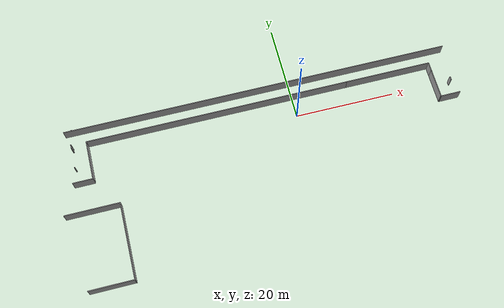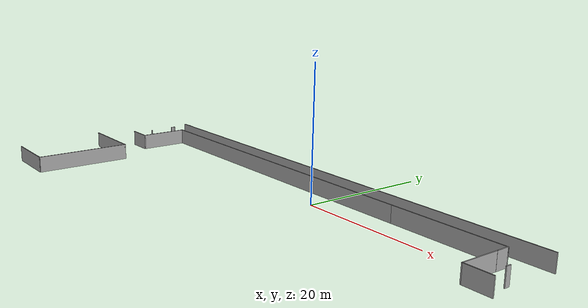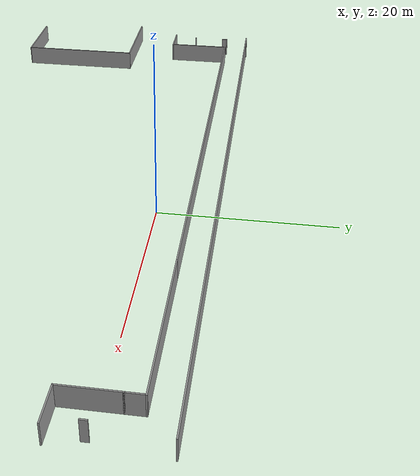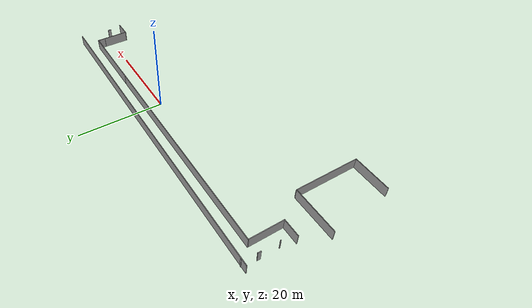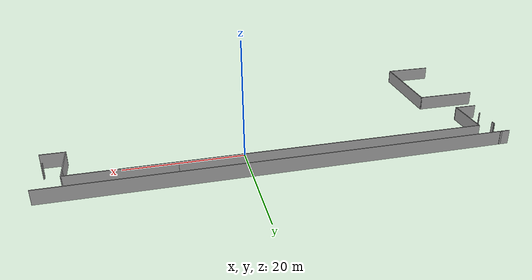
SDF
<sdf version="1.7">
 <model name="TD">
  <pose>-6.31602 -6.69767 0 0 -0 0</pose>
  <link name="Wall_109">
   <collision name="Wall_109_Collision">
    <geometry><box><size>4.11337 0.15 2.5</size></box></geometry>
    <pose>0 0 1.25 0 -0 0</pose>
   </collision>
   <visual name="Wall_109_Visual">
    <pose>0 0 1.25 0 -0 0</pose>
    <geometry><box><size>4.11337 0.15 2.5</size></box></geometry>
    <material>
     <script><uri>file://media/materials/scripts/gazebo.material</uri><name>Gazebo/Grey</name></script>
     <ambient>1 1 1 1</ambient>
    </material>
    <meta><layer>0</layer></meta>
   </visual>
   <pose>36.8641 2.84678 0 0 -0 3.14159</pose>
  </link>
  <link name="Wall_110">
   <collision name="Wall_110_Collision">
    <geometry><box><size>6 0.15 2.5</size></box></geometry>
    <pose>0 0 1.25 0 -0 0</pose>
   </collision>
   <visual name="Wall_110_Visual">
    <pose>0 0 1.25 0 -0 0</pose>
    <geometry><box><size>6 0.15 2.5</size></box></geometry>
    <material>
     <script><uri>file://media/materials/scripts/gazebo.material</uri><name>Gazebo/Grey</name></script>
     <ambient>1 1 1 1</ambient>
    </material>
    <meta><layer>0</layer></meta>
   </visual>
   <pose>34.8827 5.77178 0 0 -0 1.5708</pose>
  </link>
  <link name="Wall_111">
   <collision name="Wall_111_Collision">
    <geometry><box><size>0.16 0.15 2.5</size></box></geometry>
    <pose>0 0 1.25 0 -0 0</pose>
   </collision>
   <visual name="Wall_111_Visual">
    <pose>0 0 1.25 0 -0 0</pose>
    <geometry><box><size>0.16 0.15 2.5</size></box></geometry>
    <material>
     <script><uri>file://media/materials/scripts/gazebo.material</uri><name>Gazebo/Grey</name></script>
     <ambient>1 1 1 1</ambient>
    </material>
    <meta><layer>0</layer></meta>
   </visual>
   <pose>34.8877 8.69678 0 0 -0 0</pose>
  </link>
  <link name="Wall_112">
   <collision name="Wall_112_Collision">
    <geometry><box><size>0.16 0.15 2.5</size></box></geometry>
    <pose>0 0 1.25 0 -0 0</pose>
   </collision>
   <visual name="Wall_112_Visual">
    <pose>0 0 1.25 0 -0 0</pose>
    <geometry><box><size>0.16 0.15 2.5</size></box></geometry>
    <material>
     <script><uri>file://media/materials/scripts/gazebo.material</uri><name>Gazebo/Grey</name></script>
     <ambient>1 1 1 1</ambient>
    </material>
    <meta><layer>0</layer></meta>
   </visual>
   <pose>34.8877 8.69678 0 0 -0 3.14159</pose>
  </link>
  <link name="Wall_116">
   <collision name="Wall_116_Collision">
    <geometry><box><size>2 0.15 2.5</size></box></geometry>
    <pose>0 0 1.25 0 -0 0</pose>
   </collision>
   <visual name="Wall_116_Visual">
    <pose>0 0 1.25 0 -0 0</pose>
    <geometry><box><size>2 0.15 2.5</size></box></geometry>
    <material>
     <script><uri>file://media/materials/scripts/gazebo.material</uri><name>Gazebo/Grey</name></script>
     <ambient>1 1 1 1</ambient>
    </material>
    <meta><layer>0</layer></meta>
   </visual>
   <pose>34.8927 9.62178 0 0 -0 1.5708</pose>
  </link>
  <link name="Wall_118">
   <collision name="Wall_118_Collision">
    <geometry><box><size>17.5 0.15 2.5</size></box></geometry>
    <pose>0 0 1.25 0 -0 0</pose>
   </collision>
   <visual name="Wall_118_Visual">
    <pose>0 0 1.25 0 -0 0</pose>
    <geometry><box><size>17.5 0.15 2.5</size></box></geometry>
    <material>
     <script><uri>file://media/materials/scripts/gazebo.material</uri><name>Gazebo/Grey</name></script>
     <ambient>1 1 1 1</ambient>
    </material>
    <meta><layer>0</layer></meta>
   </visual>
   <pose>26.2177 10.5468 0 0 -0 3.14159</pose>
  </link>
  <link name="Wall_120">
   <collision name="Wall_120_Collision">
    <geometry><box><size>52.75 0.15 2.5</size></box></geometry>
    <pose>0 0 1.25 0 -0 0</pose>
   </collision>
   <visual name="Wall_120_Visual">
    <pose>0 0 1.25 0 -0 0</pose>
    <geometry><box><size>52.75 0.15 2.5</size></box></geometry>
    <material>
     <script><uri>file://media/materials/scripts/gazebo.material</uri><name>Gazebo/Grey</name></script>
     <ambient>1 1 1 1</ambient>
    </material>
    <meta><layer>0</layer></meta>
   </visual>
   <pose>-8.7573 10.5468 0 0 -0 3.14159</pose>
  </link>
  <link name="Wall_121">
   <collision name="Wall_121_Collision">
    <geometry><box><size>8 0.15 2.5</size></box></geometry>
    <pose>0 0 1.25 0 -0 0</pose>
   </collision>
   <visual name="Wall_121_Visual">
    <pose>0 0 1.25 0 -0 0</pose>
    <geometry><box><size>8 0.15 2.5</size></box></geometry>
    <material>
     <script><uri>file://media/materials/scripts/gazebo.material</uri><name>Gazebo/Grey</name></script>
     <ambient>1 1 1 1</ambient>
    </material>
    <meta><layer>0</layer></meta>
   </visual>
   <pose>-35.0573 6.62178 0 0 -0 -1.5708</pose>
  </link>
  <link name="Wall_122">
   <collision name="Wall_122_Collision">
    <geometry><box><size>4 0.15 2.5</size></box></geometry>
    <pose>0 0 1.25 0 -0 0</pose>
   </collision>
   <visual name="Wall_122_Visual">
    <pose>0 0 1.25 0 -0 0</pose>
    <geometry><box><size>4 0.15 2.5</size></box></geometry>
    <material>
     <script><uri>file://media/materials/scripts/gazebo.material</uri><name>Gazebo/Grey</name></script>
     <ambient>1 1 1 1</ambient>
    </material>
    <meta><layer>0</layer></meta>
   </visual>
   <pose>-36.9823 2.69678 0 0 -0 3.14159</pose>
  </link>
  <link name="Wall_2">
   <collision name="Wall_2_Collision">
    <geometry><box><size>10.75 0.15 2.5</size></box></geometry>
    <pose>0 0 1.25 0 -0 0</pose>
   </collision>
   <visual name="Wall_2_Visual">
    <pose>0 0 1.25 0 -0 0</pose>
    <geometry><box><size>10.75 0.15 2.5</size></box></geometry>
    <material>
     <script><uri>file://media/materials/scripts/gazebo.material</uri><name>Gazebo/Grey</name></script>
     <ambient>1 1 1 1</ambient>
    </material>
    <meta><layer>0</layer></meta>
   </visual>
   <pose>-36.2022 -3.30891 0 0 -0 0</pose>
  </link>
  <link name="Wall_264">
   <collision name="Wall_264_Collision">
    <geometry><box><size>0.75 0.15 2.5</size></box></geometry>
    <pose>0 0 1.25 0 -0 0</pose>
   </collision>
   <visual name="Wall_264_Visual">
    <pose>0 0 1.25 0 -0 0</pose>
    <geometry><box><size>0.75 0.15 2.5</size></box></geometry>
    <material>
     <script><uri>file://media/materials/scripts/gazebo.material</uri><name>Gazebo/Grey</name></script>
     <ambient>1 1 1 1</ambient>
    </material>
    <meta><layer>0</layer></meta>
   </visual>
   <pose>-38.0465 10.2818 0 0 -0 1.5708</pose>
  </link>
  <link name="Wall_267">
   <collision name="Wall_267_Collision">
    <geometry><box><size>0.16 0.15 2.5</size></box></geometry>
    <pose>0 0 1.25 0 -0 0</pose>
   </collision>
   <visual name="Wall_267_Visual">
    <pose>0 0 1.25 0 -0 0</pose>
    <geometry><box><size>0.16 0.15 2.5</size></box></geometry>
    <material>
     <script><uri>file://media/materials/scripts/gazebo.material</uri><name>Gazebo/Grey</name></script>
     <ambient>1 1 1 1</ambient>
    </material>
    <meta><layer>0</layer></meta>
   </visual>
   <pose>-38.0415 10.5818 0 0 -0 0</pose>
  </link>
  <link name="Wall_268">
   <collision name="Wall_268_Collision">
    <geometry><box><size>0.16 0.15 2.5</size></box></geometry>
    <pose>0 0 1.25 0 -0 0</pose>
   </collision>
   <visual name="Wall_268_Visual">
    <pose>0 0 1.25 0 -0 0</pose>
    <geometry><box><size>0.16 0.15 2.5</size></box></geometry>
    <material>
     <script><uri>file://media/materials/scripts/gazebo.material</uri><name>Gazebo/Grey</name></script>
     <ambient>1 1 1 1</ambient>
    </material>
    <meta><layer>0</layer></meta>
   </visual>
   <pose>-38.0315 10.5818 0 0 -0 0</pose>
  </link>
  <link name="Wall_276">
   <collision name="Wall_276_Collision">
    <geometry><box><size>0.16 0.15 2.5</size></box></geometry>
    <pose>0 0 1.25 0 -0 0</pose>
   </collision>
   <visual name="Wall_276_Visual">
    <pose>0 0 1.25 0 -0 0</pose>
    <geometry><box><size>0.16 0.15 2.5</size></box></geometry>
    <material>
     <script><uri>file://media/materials/scripts/gazebo.material</uri><name>Gazebo/Grey</name></script>
     <ambient>1 1 1 1</ambient>
    </material>
    <meta><layer>0</layer></meta>
   </visual>
   <pose>-38.0754 5.83621 0 0 -0 0</pose>
  </link>
  <link name="Wall_277">
   <collision name="Wall_277_Collision">
    <geometry><box><size>0.16 0.15 2.5</size></box></geometry>
    <pose>0 0 1.25 0 -0 0</pose>
   </collision>
   <visual name="Wall_277_Visual">
    <pose>0 0 1.25 0 -0 0</pose>
    <geometry><box><size>0.16 0.15 2.5</size></box></geometry>
    <material>
     <script><uri>file://media/materials/scripts/gazebo.material</uri><name>Gazebo/Grey</name></script>
     <ambient>1 1 1 1</ambient>
    </material>
    <meta><layer>0</layer></meta>
   </visual>
   <pose>-38.0754 5.83621 0 0 -0 3.14159</pose>
  </link>
  <link name="Wall_3">
   <collision name="Wall_3_Collision">
    <geometry><box><size>15.2386 0.15 2.5</size></box></geometry>
    <pose>0 0 1.25 0 -0 0</pose>
   </collision>
   <visual name="Wall_3_Visual">
    <pose>0 0 1.25 0 -0 0</pose>
    <geometry><box><size>15.2386 0.15 2.5</size></box></geometry>
    <material>
     <script><uri>file://media/materials/scripts/gazebo.material</uri><name>Gazebo/Grey</name></script>
     <ambient>1 1 1 1</ambient>
    </material>
    <meta><layer>0</layer></meta>
   </visual>
   <pose>-30.9121 -10.8532 0 0 -0 -1.57212</pose>
  </link>
  <link name="Wall_319">
   <collision name="Wall_319_Collision">
    <geometry><box><size>0.75 0.15 2.5</size></box></geometry>
    <pose>0 0 1.25 0 -0 0</pose>
   </collision>
   <visual name="Wall_319_Visual">
    <pose>0 0 1.25 0 -0 0</pose>
    <geometry><box><size>0.75 0.15 2.5</size></box></geometry>
    <material>
     <script><uri>file://media/materials/scripts/gazebo.material</uri><name>Gazebo/Grey</name></script>
     <ambient>1 1 1 1</ambient>
    </material>
    <meta><layer>0</layer></meta>
   </visual>
   <pose>38.0756 6.1564 0 0 -0 -1.5708</pose>
  </link>
  <link name="Wall_4">
   <collision name="Wall_4_Collision">
    <geometry><box><size>8.72482 0.15 2.5</size></box></geometry>
    <pose>0 0 1.25 0 -0 0</pose>
   </collision>
   <visual name="Wall_4_Visual">
    <pose>0 0 1.25 0 -0 0</pose>
    <geometry><box><size>8.72482 0.15 2.5</size></box></geometry>
    <material>
     <script><uri>file://media/materials/scripts/gazebo.material</uri><name>Gazebo/Grey</name></script>
     <ambient>1 1 1 1</ambient>
    </material>
    <meta><layer>0</layer></meta>
   </visual>
   <pose>-35.2095 -18.3977 0 0 -0 -3.14154</pose>
  </link>
  <link name="Wall_71">
   <collision name="Wall_71_Collision">
    <geometry><box><size>0.3 0.15 2.5</size></box></geometry>
    <pose>0 0 1.25 0 -0 0</pose>
   </collision>
   <visual name="Wall_71_Visual">
    <pose>0 0 1.25 0 -0 0</pose>
    <geometry><box><size>0.3 0.15 2.5</size></box></geometry>
    <material>
     <script><uri>file://media/materials/scripts/gazebo.material</uri><name>Gazebo/Grey</name></script>
     <ambient>1 1 1 1</ambient>
    </material>
    <meta><layer>0</layer></meta>
   </visual>
   <pose>-37.4416 13.6218 0 0 -0 3.14159</pose>
  </link>
  <link name="Wall_79">
   <collision name="Wall_79_Collision">
    <geometry><box><size>78 0.15 2.5</size></box></geometry>
    <pose>0 0 1.25 0 -0 0</pose>
   </collision>
   <visual name="Wall_79_Visual">
    <pose>0 0 1.25 0 -0 0</pose>
    <geometry><box><size>78 0.15 2.5</size></box></geometry>
    <material>
     <script><uri>file://media/materials/scripts/gazebo.material</uri><name>Gazebo/Grey</name></script>
     <ambient>1 1 1 1</ambient>
    </material>
    <meta><layer>0</layer></meta>
   </visual>
   <pose>-0.057696 13.5479 0 0 -0 0</pose>
  </link>
  <static>1</static>
 </model>
</sdf>
